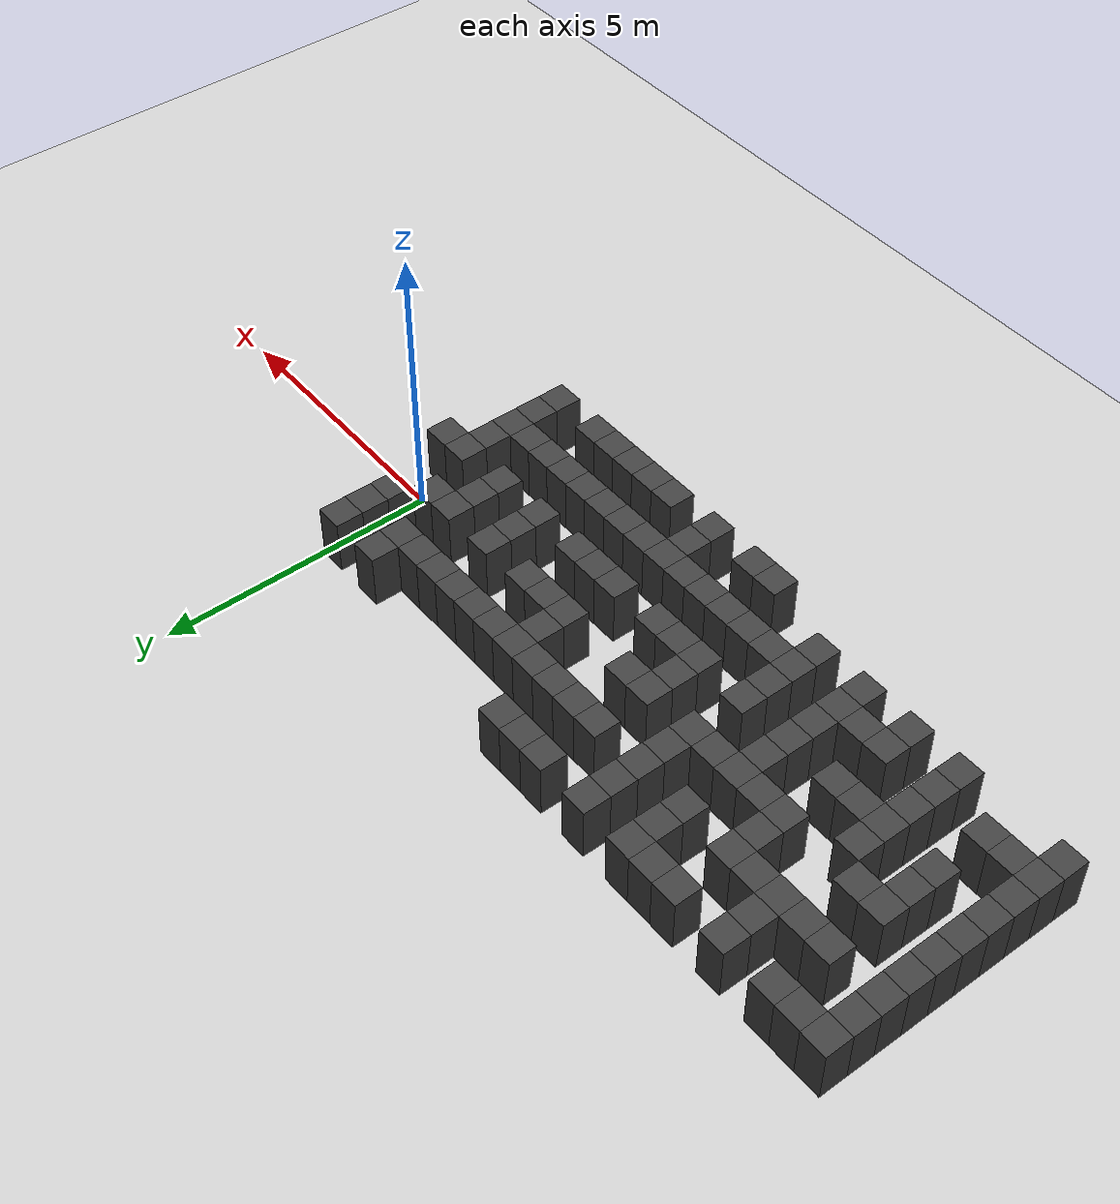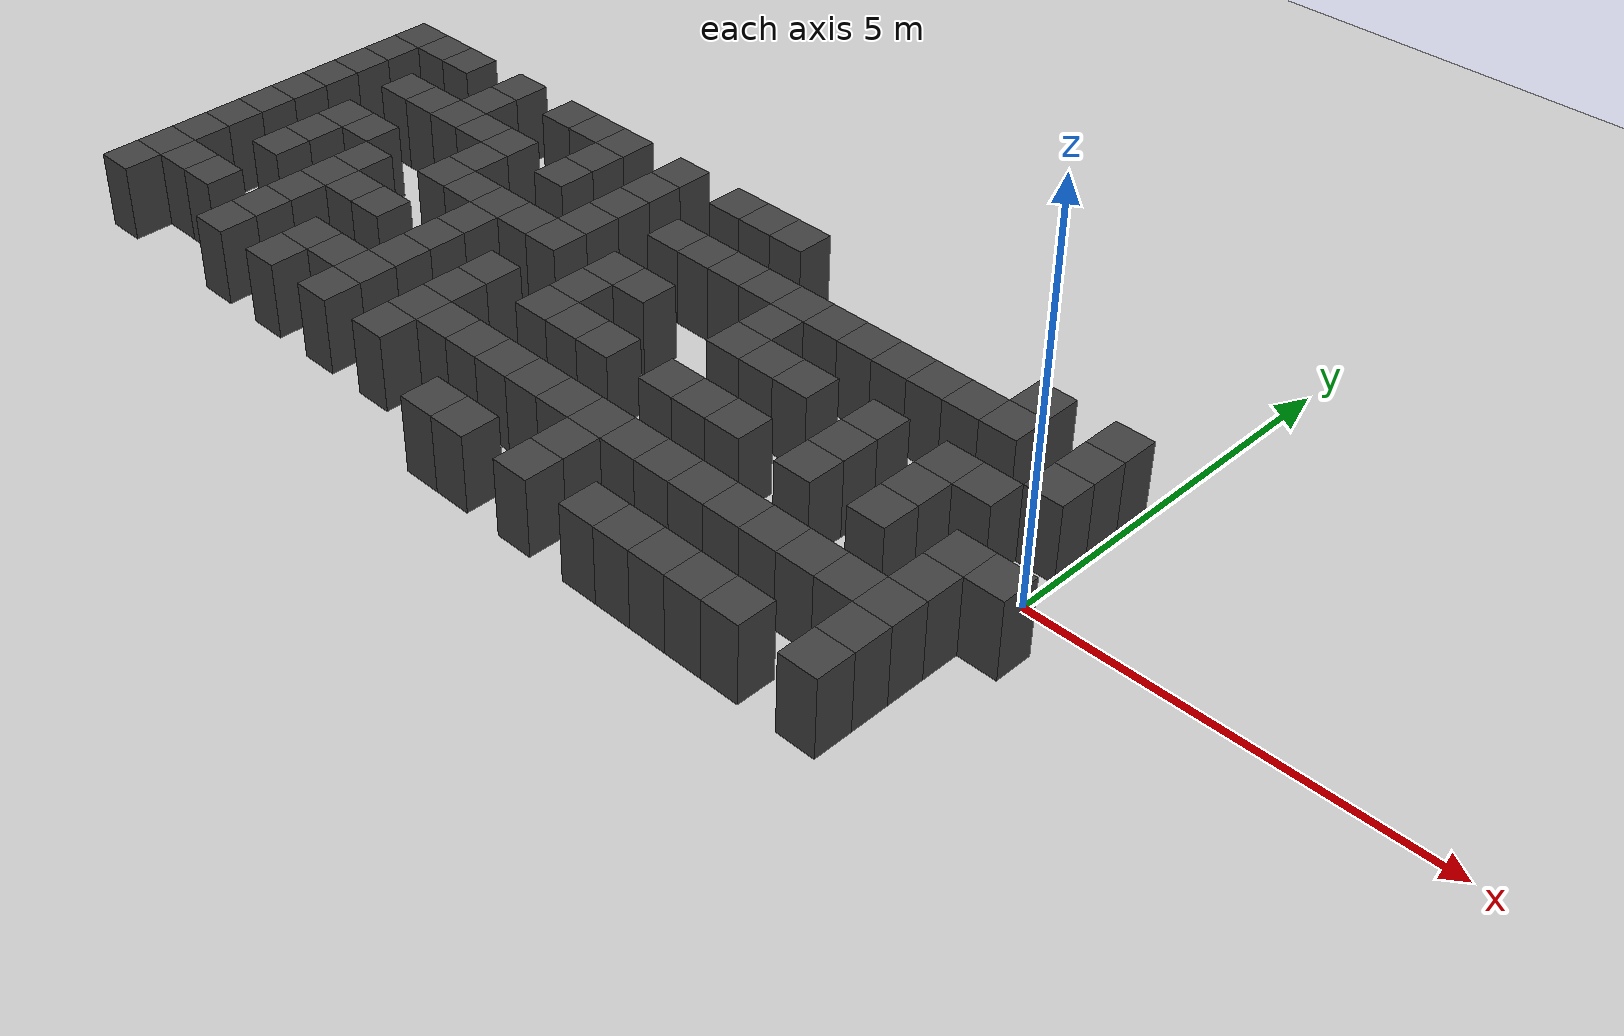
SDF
<sdf version="1.7">
 <world name="map_16603">
  <model name="ground_plane">
   <static>true</static>
   <link name="link">
    <collision name="collision">
     <geometry><plane><normal>0 0 1</normal><size>200 200</size></plane></geometry>
    </collision>
    <visual name="visual">
     <geometry><plane><normal>0 0 1</normal><size>200 200</size></plane></geometry>
     <material><ambient>0.8 0.8 0.8 1</ambient><diffuse>0.8 0.8 0.8 1</diffuse></material>
    </visual>
   </link>
  </model>
  <model name="maze_environment">
   <static>true</static>
   <link name="wall_484">
    <pose>-12.250 2.250 0.500 0 0 0</pose>
    <collision name="col"><geometry><box><size>0.5 0.5 1.0</size></box></geometry></collision>
    <visual name="vis">
     <geometry><box><size>0.5 0.5 1.0</size></box></geometry>
     <material><ambient>0.15 0.15 0.15 1</ambient><diffuse>0.25 0.25 0.25 1</diffuse></material>
    </visual>
   </link>
   <link name="wall_485">
    <pose>-11.750 2.250 0.500 0 0 0</pose>
    <collision name="col"><geometry><box><size>0.5 0.5 1.0</size></box></geometry></collision>
    <visual name="vis">
     <geometry><box><size>0.5 0.5 1.0</size></box></geometry>
     <material><ambient>0.15 0.15 0.15 1</ambient><diffuse>0.25 0.25 0.25 1</diffuse></material>
    </visual>
   </link>
   <link name="wall_486">
    <pose>-11.250 2.250 0.500 0 0 0</pose>
    <collision name="col"><geometry><box><size>0.5 0.5 1.0</size></box></geometry></collision>
    <visual name="vis">
     <geometry><box><size>0.5 0.5 1.0</size></box></geometry>
     <material><ambient>0.15 0.15 0.15 1</ambient><diffuse>0.25 0.25 0.25 1</diffuse></material>
    </visual>
   </link>
   <link name="wall_487">
    <pose>-10.250 2.250 0.500 0 0 0</pose>
    <collision name="col"><geometry><box><size>0.5 0.5 1.0</size></box></geometry></collision>
    <visual name="vis">
     <geometry><box><size>0.5 0.5 1.0</size></box></geometry>
     <material><ambient>0.15 0.15 0.15 1</ambient><diffuse>0.25 0.25 0.25 1</diffuse></material>
    </visual>
   </link>
   <link name="wall_488">
    <pose>-9.250 2.250 0.500 0 0 0</pose>
    <collision name="col"><geometry><box><size>0.5 0.5 1.0</size></box></geometry></collision>
    <visual name="vis">
     <geometry><box><size>0.5 0.5 1.0</size></box></geometry>
     <material><ambient>0.15 0.15 0.15 1</ambient><diffuse>0.25 0.25 0.25 1</diffuse></material>
    </visual>
   </link>
   <link name="wall_489">
    <pose>-8.750 2.250 0.500 0 0 0</pose>
    <collision name="col"><geometry><box><size>0.5 0.5 1.0</size></box></geometry></collision>
    <visual name="vis">
     <geometry><box><size>0.5 0.5 1.0</size></box></geometry>
     <material><ambient>0.15 0.15 0.15 1</ambient><diffuse>0.25 0.25 0.25 1</diffuse></material>
    </visual>
   </link>
   <link name="wall_490">
    <pose>-8.250 2.250 0.500 0 0 0</pose>
    <collision name="col"><geometry><box><size>0.5 0.5 1.0</size></box></geometry></collision>
    <visual name="vis">
     <geometry><box><size>0.5 0.5 1.0</size></box></geometry>
     <material><ambient>0.15 0.15 0.15 1</ambient><diffuse>0.25 0.25 0.25 1</diffuse></material>
    </visual>
   </link>
   <link name="wall_491">
    <pose>-7.250 2.250 0.500 0 0 0</pose>
    <collision name="col"><geometry><box><size>0.5 0.5 1.0</size></box></geometry></collision>
    <visual name="vis">
     <geometry><box><size>0.5 0.5 1.0</size></box></geometry>
     <material><ambient>0.15 0.15 0.15 1</ambient><diffuse>0.25 0.25 0.25 1</diffuse></material>
    </visual>
   </link>
   <link name="wall_492">
    <pose>-6.250 2.250 0.500 0 0 0</pose>
    <collision name="col"><geometry><box><size>0.5 0.5 1.0</size></box></geometry></collision>
    <visual name="vis">
     <geometry><box><size>0.5 0.5 1.0</size></box></geometry>
     <material><ambient>0.15 0.15 0.15 1</ambient><diffuse>0.25 0.25 0.25 1</diffuse></material>
    </visual>
   </link>
   <link name="wall_493">
    <pose>-5.750 2.250 0.500 0 0 0</pose>
    <collision name="col"><geometry><box><size>0.5 0.5 1.0</size></box></geometry></collision>
    <visual name="vis">
     <geometry><box><size>0.5 0.5 1.0</size></box></geometry>
     <material><ambient>0.15 0.15 0.15 1</ambient><diffuse>0.25 0.25 0.25 1</diffuse></material>
    </visual>
   </link>
   <link name="wall_494">
    <pose>-5.250 2.250 0.500 0 0 0</pose>
    <collision name="col"><geometry><box><size>0.5 0.5 1.0</size></box></geometry></collision>
    <visual name="vis">
     <geometry><box><size>0.5 0.5 1.0</size></box></geometry>
     <material><ambient>0.15 0.15 0.15 1</ambient><diffuse>0.25 0.25 0.25 1</diffuse></material>
    </visual>
   </link>
   <link name="wall_519">
    <pose>-12.250 1.750 0.500 0 0 0</pose>
    <collision name="col"><geometry><box><size>0.5 0.5 1.0</size></box></geometry></collision>
    <visual name="vis">
     <geometry><box><size>0.5 0.5 1.0</size></box></geometry>
     <material><ambient>0.15 0.15 0.15 1</ambient><diffuse>0.25 0.25 0.25 1</diffuse></material>
    </visual>
   </link>
   <link name="wall_520">
    <pose>-10.250 1.750 0.500 0 0 0</pose>
    <collision name="col"><geometry><box><size>0.5 0.5 1.0</size></box></geometry></collision>
    <visual name="vis">
     <geometry><box><size>0.5 0.5 1.0</size></box></geometry>
     <material><ambient>0.15 0.15 0.15 1</ambient><diffuse>0.25 0.25 0.25 1</diffuse></material>
    </visual>
   </link>
   <link name="wall_521">
    <pose>-8.250 1.750 0.500 0 0 0</pose>
    <collision name="col"><geometry><box><size>0.5 0.5 1.0</size></box></geometry></collision>
    <visual name="vis">
     <geometry><box><size>0.5 0.5 1.0</size></box></geometry>
     <material><ambient>0.15 0.15 0.15 1</ambient><diffuse>0.25 0.25 0.25 1</diffuse></material>
    </visual>
   </link>
   <link name="wall_522">
    <pose>-7.250 1.750 0.500 0 0 0</pose>
    <collision name="col"><geometry><box><size>0.5 0.5 1.0</size></box></geometry></collision>
    <visual name="vis">
     <geometry><box><size>0.5 0.5 1.0</size></box></geometry>
     <material><ambient>0.15 0.15 0.15 1</ambient><diffuse>0.25 0.25 0.25 1</diffuse></material>
    </visual>
   </link>
   <link name="wall_523">
    <pose>-1.250 1.750 0.500 0 0 0</pose>
    <collision name="col"><geometry><box><size>0.5 0.5 1.0</size></box></geometry></collision>
    <visual name="vis">
     <geometry><box><size>0.5 0.5 1.0</size></box></geometry>
     <material><ambient>0.15 0.15 0.15 1</ambient><diffuse>0.25 0.25 0.25 1</diffuse></material>
    </visual>
   </link>
   <link name="wall_524">
    <pose>-0.250 1.750 0.500 0 0 0</pose>
    <collision name="col"><geometry><box><size>0.5 0.5 1.0</size></box></geometry></collision>
    <visual name="vis">
     <geometry><box><size>0.5 0.5 1.0</size></box></geometry>
     <material><ambient>0.15 0.15 0.15 1</ambient><diffuse>0.25 0.25 0.25 1</diffuse></material>
    </visual>
   </link>
   <link name="wall_531">
    <pose>-12.250 1.250 0.500 0 0 0</pose>
    <collision name="col"><geometry><box><size>0.5 0.5 1.0</size></box></geometry></collision>
    <visual name="vis">
     <geometry><box><size>0.5 0.5 1.0</size></box></geometry>
     <material><ambient>0.15 0.15 0.15 1</ambient><diffuse>0.25 0.25 0.25 1</diffuse></material>
    </visual>
   </link>
   <link name="wall_532">
    <pose>-11.250 1.250 0.500 0 0 0</pose>
    <collision name="col"><geometry><box><size>0.5 0.5 1.0</size></box></geometry></collision>
    <visual name="vis">
     <geometry><box><size>0.5 0.5 1.0</size></box></geometry>
     <material><ambient>0.15 0.15 0.15 1</ambient><diffuse>0.25 0.25 0.25 1</diffuse></material>
    </visual>
   </link>
   <link name="wall_533">
    <pose>-10.750 1.250 0.500 0 0 0</pose>
    <collision name="col"><geometry><box><size>0.5 0.5 1.0</size></box></geometry></collision>
    <visual name="vis">
     <geometry><box><size>0.5 0.5 1.0</size></box></geometry>
     <material><ambient>0.15 0.15 0.15 1</ambient><diffuse>0.25 0.25 0.25 1</diffuse></material>
    </visual>
   </link>
   <link name="wall_534">
    <pose>-10.250 1.250 0.500 0 0 0</pose>
    <collision name="col"><geometry><box><size>0.5 0.5 1.0</size></box></geometry></collision>
    <visual name="vis">
     <geometry><box><size>0.5 0.5 1.0</size></box></geometry>
     <material><ambient>0.15 0.15 0.15 1</ambient><diffuse>0.25 0.25 0.25 1</diffuse></material>
    </visual>
   </link>
   <link name="wall_535">
    <pose>-9.750 1.250 0.500 0 0 0</pose>
    <collision name="col"><geometry><box><size>0.5 0.5 1.0</size></box></geometry></collision>
    <visual name="vis">
     <geometry><box><size>0.5 0.5 1.0</size></box></geometry>
     <material><ambient>0.15 0.15 0.15 1</ambient><diffuse>0.25 0.25 0.25 1</diffuse></material>
    </visual>
   </link>
   <link name="wall_536">
    <pose>-9.250 1.250 0.500 0 0 0</pose>
    <collision name="col"><geometry><box><size>0.5 0.5 1.0</size></box></geometry></collision>
    <visual name="vis">
     <geometry><box><size>0.5 0.5 1.0</size></box></geometry>
     <material><ambient>0.15 0.15 0.15 1</ambient><diffuse>0.25 0.25 0.25 1</diffuse></material>
    </visual>
   </link>
   <link name="wall_537">
    <pose>-8.250 1.250 0.500 0 0 0</pose>
    <collision name="col"><geometry><box><size>0.5 0.5 1.0</size></box></geometry></collision>
    <visual name="vis">
     <geometry><box><size>0.5 0.5 1.0</size></box></geometry>
     <material><ambient>0.15 0.15 0.15 1</ambient><diffuse>0.25 0.25 0.25 1</diffuse></material>
    </visual>
   </link>
   <link name="wall_538">
    <pose>-7.250 1.250 0.500 0 0 0</pose>
    <collision name="col"><geometry><box><size>0.5 0.5 1.0</size></box></geometry></collision>
    <visual name="vis">
     <geometry><box><size>0.5 0.5 1.0</size></box></geometry>
     <material><ambient>0.15 0.15 0.15 1</ambient><diffuse>0.25 0.25 0.25 1</diffuse></material>
    </visual>
   </link>
   <link name="wall_539">
    <pose>-6.250 1.250 0.500 0 0 0</pose>
    <collision name="col"><geometry><box><size>0.5 0.5 1.0</size></box></geometry></collision>
    <visual name="vis">
     <geometry><box><size>0.5 0.5 1.0</size></box></geometry>
     <material><ambient>0.15 0.15 0.15 1</ambient><diffuse>0.25 0.25 0.25 1</diffuse></material>
    </visual>
   </link>
   <link name="wall_540">
    <pose>-5.750 1.250 0.500 0 0 0</pose>
    <collision name="col"><geometry><box><size>0.5 0.5 1.0</size></box></geometry></collision>
    <visual name="vis">
     <geometry><box><size>0.5 0.5 1.0</size></box></geometry>
     <material><ambient>0.15 0.15 0.15 1</ambient><diffuse>0.25 0.25 0.25 1</diffuse></material>
    </visual>
   </link>
   <link name="wall_541">
    <pose>-5.250 1.250 0.500 0 0 0</pose>
    <collision name="col"><geometry><box><size>0.5 0.5 1.0</size></box></geometry></collision>
    <visual name="vis">
     <geometry><box><size>0.5 0.5 1.0</size></box></geometry>
     <material><ambient>0.15 0.15 0.15 1</ambient><diffuse>0.25 0.25 0.25 1</diffuse></material>
    </visual>
   </link>
   <link name="wall_542">
    <pose>-4.750 1.250 0.500 0 0 0</pose>
    <collision name="col"><geometry><box><size>0.5 0.5 1.0</size></box></geometry></collision>
    <visual name="vis">
     <geometry><box><size>0.5 0.5 1.0</size></box></geometry>
     <material><ambient>0.15 0.15 0.15 1</ambient><diffuse>0.25 0.25 0.25 1</diffuse></material>
    </visual>
   </link>
   <link name="wall_543">
    <pose>-4.250 1.250 0.500 0 0 0</pose>
    <collision name="col"><geometry><box><size>0.5 0.5 1.0</size></box></geometry></collision>
    <visual name="vis">
     <geometry><box><size>0.5 0.5 1.0</size></box></geometry>
     <material><ambient>0.15 0.15 0.15 1</ambient><diffuse>0.25 0.25 0.25 1</diffuse></material>
    </visual>
   </link>
   <link name="wall_544">
    <pose>-3.750 1.250 0.500 0 0 0</pose>
    <collision name="col"><geometry><box><size>0.5 0.5 1.0</size></box></geometry></collision>
    <visual name="vis">
     <geometry><box><size>0.5 0.5 1.0</size></box></geometry>
     <material><ambient>0.15 0.15 0.15 1</ambient><diffuse>0.25 0.25 0.25 1</diffuse></material>
    </visual>
   </link>
   <link name="wall_545">
    <pose>-3.250 1.250 0.500 0 0 0</pose>
    <collision name="col"><geometry><box><size>0.5 0.5 1.0</size></box></geometry></collision>
    <visual name="vis">
     <geometry><box><size>0.5 0.5 1.0</size></box></geometry>
     <material><ambient>0.15 0.15 0.15 1</ambient><diffuse>0.25 0.25 0.25 1</diffuse></material>
    </visual>
   </link>
   <link name="wall_546">
    <pose>-2.750 1.250 0.500 0 0 0</pose>
    <collision name="col"><geometry><box><size>0.5 0.5 1.0</size></box></geometry></collision>
    <visual name="vis">
     <geometry><box><size>0.5 0.5 1.0</size></box></geometry>
     <material><ambient>0.15 0.15 0.15 1</ambient><diffuse>0.25 0.25 0.25 1</diffuse></material>
    </visual>
   </link>
   <link name="wall_547">
    <pose>-2.250 1.250 0.500 0 0 0</pose>
    <collision name="col"><geometry><box><size>0.5 0.5 1.0</size></box></geometry></collision>
    <visual name="vis">
     <geometry><box><size>0.5 0.5 1.0</size></box></geometry>
     <material><ambient>0.15 0.15 0.15 1</ambient><diffuse>0.25 0.25 0.25 1</diffuse></material>
    </visual>
   </link>
   <link name="wall_548">
    <pose>-1.750 1.250 0.500 0 0 0</pose>
    <collision name="col"><geometry><box><size>0.5 0.5 1.0</size></box></geometry></collision>
    <visual name="vis">
     <geometry><box><size>0.5 0.5 1.0</size></box></geometry>
     <material><ambient>0.15 0.15 0.15 1</ambient><diffuse>0.25 0.25 0.25 1</diffuse></material>
    </visual>
   </link>
   <link name="wall_549">
    <pose>-1.250 1.250 0.500 0 0 0</pose>
    <collision name="col"><geometry><box><size>0.5 0.5 1.0</size></box></geometry></collision>
    <visual name="vis">
     <geometry><box><size>0.5 0.5 1.0</size></box></geometry>
     <material><ambient>0.15 0.15 0.15 1</ambient><diffuse>0.25 0.25 0.25 1</diffuse></material>
    </visual>
   </link>
   <link name="wall_550">
    <pose>-0.250 1.250 0.500 0 0 0</pose>
    <collision name="col"><geometry><box><size>0.5 0.5 1.0</size></box></geometry></collision>
    <visual name="vis">
     <geometry><box><size>0.5 0.5 1.0</size></box></geometry>
     <material><ambient>0.15 0.15 0.15 1</ambient><diffuse>0.25 0.25 0.25 1</diffuse></material>
    </visual>
   </link>
   <link name="wall_569">
    <pose>-12.250 0.750 0.500 0 0 0</pose>
    <collision name="col"><geometry><box><size>0.5 0.5 1.0</size></box></geometry></collision>
    <visual name="vis">
     <geometry><box><size>0.5 0.5 1.0</size></box></geometry>
     <material><ambient>0.15 0.15 0.15 1</ambient><diffuse>0.25 0.25 0.25 1</diffuse></material>
    </visual>
   </link>
   <link name="wall_570">
    <pose>-9.250 0.750 0.500 0 0 0</pose>
    <collision name="col"><geometry><box><size>0.5 0.5 1.0</size></box></geometry></collision>
    <visual name="vis">
     <geometry><box><size>0.5 0.5 1.0</size></box></geometry>
     <material><ambient>0.15 0.15 0.15 1</ambient><diffuse>0.25 0.25 0.25 1</diffuse></material>
    </visual>
   </link>
   <link name="wall_571">
    <pose>-7.250 0.750 0.500 0 0 0</pose>
    <collision name="col"><geometry><box><size>0.5 0.5 1.0</size></box></geometry></collision>
    <visual name="vis">
     <geometry><box><size>0.5 0.5 1.0</size></box></geometry>
     <material><ambient>0.15 0.15 0.15 1</ambient><diffuse>0.25 0.25 0.25 1</diffuse></material>
    </visual>
   </link>
   <link name="wall_572">
    <pose>-4.250 0.750 0.500 0 0 0</pose>
    <collision name="col"><geometry><box><size>0.5 0.5 1.0</size></box></geometry></collision>
    <visual name="vis">
     <geometry><box><size>0.5 0.5 1.0</size></box></geometry>
     <material><ambient>0.15 0.15 0.15 1</ambient><diffuse>0.25 0.25 0.25 1</diffuse></material>
    </visual>
   </link>
   <link name="wall_573">
    <pose>-0.250 0.750 0.500 0 0 0</pose>
    <collision name="col"><geometry><box><size>0.5 0.5 1.0</size></box></geometry></collision>
    <visual name="vis">
     <geometry><box><size>0.5 0.5 1.0</size></box></geometry>
     <material><ambient>0.15 0.15 0.15 1</ambient><diffuse>0.25 0.25 0.25 1</diffuse></material>
    </visual>
   </link>
   <link name="wall_579">
    <pose>-12.250 0.250 0.500 0 0 0</pose>
    <collision name="col"><geometry><box><size>0.5 0.5 1.0</size></box></geometry></collision>
    <visual name="vis">
     <geometry><box><size>0.5 0.5 1.0</size></box></geometry>
     <material><ambient>0.15 0.15 0.15 1</ambient><diffuse>0.25 0.25 0.25 1</diffuse></material>
    </visual>
   </link>
   <link name="wall_580">
    <pose>-11.250 0.250 0.500 0 0 0</pose>
    <collision name="col"><geometry><box><size>0.5 0.5 1.0</size></box></geometry></collision>
    <visual name="vis">
     <geometry><box><size>0.5 0.5 1.0</size></box></geometry>
     <material><ambient>0.15 0.15 0.15 1</ambient><diffuse>0.25 0.25 0.25 1</diffuse></material>
    </visual>
   </link>
   <link name="wall_581">
    <pose>-10.750 0.250 0.500 0 0 0</pose>
    <collision name="col"><geometry><box><size>0.5 0.5 1.0</size></box></geometry></collision>
    <visual name="vis">
     <geometry><box><size>0.5 0.5 1.0</size></box></geometry>
     <material><ambient>0.15 0.15 0.15 1</ambient><diffuse>0.25 0.25 0.25 1</diffuse></material>
    </visual>
   </link>
   <link name="wall_582">
    <pose>-9.250 0.250 0.500 0 0 0</pose>
    <collision name="col"><geometry><box><size>0.5 0.5 1.0</size></box></geometry></collision>
    <visual name="vis">
     <geometry><box><size>0.5 0.5 1.0</size></box></geometry>
     <material><ambient>0.15 0.15 0.15 1</ambient><diffuse>0.25 0.25 0.25 1</diffuse></material>
    </visual>
   </link>
   <link name="wall_583">
    <pose>-8.750 0.250 0.500 0 0 0</pose>
    <collision name="col"><geometry><box><size>0.5 0.5 1.0</size></box></geometry></collision>
    <visual name="vis">
     <geometry><box><size>0.5 0.5 1.0</size></box></geometry>
     <material><ambient>0.15 0.15 0.15 1</ambient><diffuse>0.25 0.25 0.25 1</diffuse></material>
    </visual>
   </link>
   <link name="wall_584">
    <pose>-8.250 0.250 0.500 0 0 0</pose>
    <collision name="col"><geometry><box><size>0.5 0.5 1.0</size></box></geometry></collision>
    <visual name="vis">
     <geometry><box><size>0.5 0.5 1.0</size></box></geometry>
     <material><ambient>0.15 0.15 0.15 1</ambient><diffuse>0.25 0.25 0.25 1</diffuse></material>
    </visual>
   </link>
   <link name="wall_585">
    <pose>-7.750 0.250 0.500 0 0 0</pose>
    <collision name="col"><geometry><box><size>0.5 0.5 1.0</size></box></geometry></collision>
    <visual name="vis">
     <geometry><box><size>0.5 0.5 1.0</size></box></geometry>
     <material><ambient>0.15 0.15 0.15 1</ambient><diffuse>0.25 0.25 0.25 1</diffuse></material>
    </visual>
   </link>
   <link name="wall_586">
    <pose>-7.250 0.250 0.500 0 0 0</pose>
    <collision name="col"><geometry><box><size>0.5 0.5 1.0</size></box></geometry></collision>
    <visual name="vis">
     <geometry><box><size>0.5 0.5 1.0</size></box></geometry>
     <material><ambient>0.15 0.15 0.15 1</ambient><diffuse>0.25 0.25 0.25 1</diffuse></material>
    </visual>
   </link>
   <link name="wall_587">
    <pose>-6.250 0.250 0.500 0 0 0</pose>
    <collision name="col"><geometry><box><size>0.5 0.5 1.0</size></box></geometry></collision>
    <visual name="vis">
     <geometry><box><size>0.5 0.5 1.0</size></box></geometry>
     <material><ambient>0.15 0.15 0.15 1</ambient><diffuse>0.25 0.25 0.25 1</diffuse></material>
    </visual>
   </link>
   <link name="wall_588">
    <pose>-5.750 0.250 0.500 0 0 0</pose>
    <collision name="col"><geometry><box><size>0.5 0.5 1.0</size></box></geometry></collision>
    <visual name="vis">
     <geometry><box><size>0.5 0.5 1.0</size></box></geometry>
     <material><ambient>0.15 0.15 0.15 1</ambient><diffuse>0.25 0.25 0.25 1</diffuse></material>
    </visual>
   </link>
   <link name="wall_589">
    <pose>-4.250 0.250 0.500 0 0 0</pose>
    <collision name="col"><geometry><box><size>0.5 0.5 1.0</size></box></geometry></collision>
    <visual name="vis">
     <geometry><box><size>0.5 0.5 1.0</size></box></geometry>
     <material><ambient>0.15 0.15 0.15 1</ambient><diffuse>0.25 0.25 0.25 1</diffuse></material>
    </visual>
   </link>
   <link name="wall_590">
    <pose>-3.750 0.250 0.500 0 0 0</pose>
    <collision name="col"><geometry><box><size>0.5 0.5 1.0</size></box></geometry></collision>
    <visual name="vis">
     <geometry><box><size>0.5 0.5 1.0</size></box></geometry>
     <material><ambient>0.15 0.15 0.15 1</ambient><diffuse>0.25 0.25 0.25 1</diffuse></material>
    </visual>
   </link>
   <link name="wall_591">
    <pose>-3.250 0.250 0.500 0 0 0</pose>
    <collision name="col"><geometry><box><size>0.5 0.5 1.0</size></box></geometry></collision>
    <visual name="vis">
     <geometry><box><size>0.5 0.5 1.0</size></box></geometry>
     <material><ambient>0.15 0.15 0.15 1</ambient><diffuse>0.25 0.25 0.25 1</diffuse></material>
    </visual>
   </link>
   <link name="wall_592">
    <pose>-2.250 0.250 0.500 0 0 0</pose>
    <collision name="col"><geometry><box><size>0.5 0.5 1.0</size></box></geometry></collision>
    <visual name="vis">
     <geometry><box><size>0.5 0.5 1.0</size></box></geometry>
     <material><ambient>0.15 0.15 0.15 1</ambient><diffuse>0.25 0.25 0.25 1</diffuse></material>
    </visual>
   </link>
   <link name="wall_593">
    <pose>-1.250 0.250 0.500 0 0 0</pose>
    <collision name="col"><geometry><box><size>0.5 0.5 1.0</size></box></geometry></collision>
    <visual name="vis">
     <geometry><box><size>0.5 0.5 1.0</size></box></geometry>
     <material><ambient>0.15 0.15 0.15 1</ambient><diffuse>0.25 0.25 0.25 1</diffuse></material>
    </visual>
   </link>
   <link name="wall_594">
    <pose>-0.750 0.250 0.500 0 0 0</pose>
    <collision name="col"><geometry><box><size>0.5 0.5 1.0</size></box></geometry></collision>
    <visual name="vis">
     <geometry><box><size>0.5 0.5 1.0</size></box></geometry>
     <material><ambient>0.15 0.15 0.15 1</ambient><diffuse>0.25 0.25 0.25 1</diffuse></material>
    </visual>
   </link>
   <link name="wall_614">
    <pose>-12.250 -0.250 0.500 0 0 0</pose>
    <collision name="col"><geometry><box><size>0.5 0.5 1.0</size></box></geometry></collision>
    <visual name="vis">
     <geometry><box><size>0.5 0.5 1.0</size></box></geometry>
     <material><ambient>0.15 0.15 0.15 1</ambient><diffuse>0.25 0.25 0.25 1</diffuse></material>
    </visual>
   </link>
   <link name="wall_615">
    <pose>-11.250 -0.250 0.500 0 0 0</pose>
    <collision name="col"><geometry><box><size>0.5 0.5 1.0</size></box></geometry></collision>
    <visual name="vis">
     <geometry><box><size>0.5 0.5 1.0</size></box></geometry>
     <material><ambient>0.15 0.15 0.15 1</ambient><diffuse>0.25 0.25 0.25 1</diffuse></material>
    </visual>
   </link>
   <link name="wall_616">
    <pose>-10.250 -0.250 0.500 0 0 0</pose>
    <collision name="col"><geometry><box><size>0.5 0.5 1.0</size></box></geometry></collision>
    <visual name="vis">
     <geometry><box><size>0.5 0.5 1.0</size></box></geometry>
     <material><ambient>0.15 0.15 0.15 1</ambient><diffuse>0.25 0.25 0.25 1</diffuse></material>
    </visual>
   </link>
   <link name="wall_617">
    <pose>-8.250 -0.250 0.500 0 0 0</pose>
    <collision name="col"><geometry><box><size>0.5 0.5 1.0</size></box></geometry></collision>
    <visual name="vis">
     <geometry><box><size>0.5 0.5 1.0</size></box></geometry>
     <material><ambient>0.15 0.15 0.15 1</ambient><diffuse>0.25 0.25 0.25 1</diffuse></material>
    </visual>
   </link>
   <link name="wall_618">
    <pose>-6.250 -0.250 0.500 0 0 0</pose>
    <collision name="col"><geometry><box><size>0.5 0.5 1.0</size></box></geometry></collision>
    <visual name="vis">
     <geometry><box><size>0.5 0.5 1.0</size></box></geometry>
     <material><ambient>0.15 0.15 0.15 1</ambient><diffuse>0.25 0.25 0.25 1</diffuse></material>
    </visual>
   </link>
   <link name="wall_619">
    <pose>-2.250 -0.250 0.500 0 0 0</pose>
    <collision name="col"><geometry><box><size>0.5 0.5 1.0</size></box></geometry></collision>
    <visual name="vis">
     <geometry><box><size>0.5 0.5 1.0</size></box></geometry>
     <material><ambient>0.15 0.15 0.15 1</ambient><diffuse>0.25 0.25 0.25 1</diffuse></material>
    </visual>
   </link>
   <link name="wall_620">
    <pose>-1.250 -0.250 0.500 0 0 0</pose>
    <collision name="col"><geometry><box><size>0.5 0.5 1.0</size></box></geometry></collision>
    <visual name="vis">
     <geometry><box><size>0.5 0.5 1.0</size></box></geometry>
     <material><ambient>0.15 0.15 0.15 1</ambient><diffuse>0.25 0.25 0.25 1</diffuse></material>
    </visual>
   </link>
   <link name="wall_629">
    <pose>-12.250 -0.750 0.500 0 0 0</pose>
    <collision name="col"><geometry><box><size>0.5 0.5 1.0</size></box></geometry></collision>
    <visual name="vis">
     <geometry><box><size>0.5 0.5 1.0</size></box></geometry>
     <material><ambient>0.15 0.15 0.15 1</ambient><diffuse>0.25 0.25 0.25 1</diffuse></material>
    </visual>
   </link>
   <link name="wall_630">
    <pose>-11.250 -0.750 0.500 0 0 0</pose>
    <collision name="col"><geometry><box><size>0.5 0.5 1.0</size></box></geometry></collision>
    <visual name="vis">
     <geometry><box><size>0.5 0.5 1.0</size></box></geometry>
     <material><ambient>0.15 0.15 0.15 1</ambient><diffuse>0.25 0.25 0.25 1</diffuse></material>
    </visual>
   </link>
   <link name="wall_631">
    <pose>-10.250 -0.750 0.500 0 0 0</pose>
    <collision name="col"><geometry><box><size>0.5 0.5 1.0</size></box></geometry></collision>
    <visual name="vis">
     <geometry><box><size>0.5 0.5 1.0</size></box></geometry>
     <material><ambient>0.15 0.15 0.15 1</ambient><diffuse>0.25 0.25 0.25 1</diffuse></material>
    </visual>
   </link>
   <link name="wall_632">
    <pose>-9.750 -0.750 0.500 0 0 0</pose>
    <collision name="col"><geometry><box><size>0.5 0.5 1.0</size></box></geometry></collision>
    <visual name="vis">
     <geometry><box><size>0.5 0.5 1.0</size></box></geometry>
     <material><ambient>0.15 0.15 0.15 1</ambient><diffuse>0.25 0.25 0.25 1</diffuse></material>
    </visual>
   </link>
   <link name="wall_633">
    <pose>-9.250 -0.750 0.500 0 0 0</pose>
    <collision name="col"><geometry><box><size>0.5 0.5 1.0</size></box></geometry></collision>
    <visual name="vis">
     <geometry><box><size>0.5 0.5 1.0</size></box></geometry>
     <material><ambient>0.15 0.15 0.15 1</ambient><diffuse>0.25 0.25 0.25 1</diffuse></material>
    </visual>
   </link>
   <link name="wall_634">
    <pose>-8.250 -0.750 0.500 0 0 0</pose>
    <collision name="col"><geometry><box><size>0.5 0.5 1.0</size></box></geometry></collision>
    <visual name="vis">
     <geometry><box><size>0.5 0.5 1.0</size></box></geometry>
     <material><ambient>0.15 0.15 0.15 1</ambient><diffuse>0.25 0.25 0.25 1</diffuse></material>
    </visual>
   </link>
   <link name="wall_635">
    <pose>-7.250 -0.750 0.500 0 0 0</pose>
    <collision name="col"><geometry><box><size>0.5 0.5 1.0</size></box></geometry></collision>
    <visual name="vis">
     <geometry><box><size>0.5 0.5 1.0</size></box></geometry>
     <material><ambient>0.15 0.15 0.15 1</ambient><diffuse>0.25 0.25 0.25 1</diffuse></material>
    </visual>
   </link>
   <link name="wall_636">
    <pose>-6.250 -0.750 0.500 0 0 0</pose>
    <collision name="col"><geometry><box><size>0.5 0.5 1.0</size></box></geometry></collision>
    <visual name="vis">
     <geometry><box><size>0.5 0.5 1.0</size></box></geometry>
     <material><ambient>0.15 0.15 0.15 1</ambient><diffuse>0.25 0.25 0.25 1</diffuse></material>
    </visual>
   </link>
   <link name="wall_637">
    <pose>-5.750 -0.750 0.500 0 0 0</pose>
    <collision name="col"><geometry><box><size>0.5 0.5 1.0</size></box></geometry></collision>
    <visual name="vis">
     <geometry><box><size>0.5 0.5 1.0</size></box></geometry>
     <material><ambient>0.15 0.15 0.15 1</ambient><diffuse>0.25 0.25 0.25 1</diffuse></material>
    </visual>
   </link>
   <link name="wall_638">
    <pose>-5.250 -0.750 0.500 0 0 0</pose>
    <collision name="col"><geometry><box><size>0.5 0.5 1.0</size></box></geometry></collision>
    <visual name="vis">
     <geometry><box><size>0.5 0.5 1.0</size></box></geometry>
     <material><ambient>0.15 0.15 0.15 1</ambient><diffuse>0.25 0.25 0.25 1</diffuse></material>
    </visual>
   </link>
   <link name="wall_639">
    <pose>-4.250 -0.750 0.500 0 0 0</pose>
    <collision name="col"><geometry><box><size>0.5 0.5 1.0</size></box></geometry></collision>
    <visual name="vis">
     <geometry><box><size>0.5 0.5 1.0</size></box></geometry>
     <material><ambient>0.15 0.15 0.15 1</ambient><diffuse>0.25 0.25 0.25 1</diffuse></material>
    </visual>
   </link>
   <link name="wall_640">
    <pose>-3.750 -0.750 0.500 0 0 0</pose>
    <collision name="col"><geometry><box><size>0.5 0.5 1.0</size></box></geometry></collision>
    <visual name="vis">
     <geometry><box><size>0.5 0.5 1.0</size></box></geometry>
     <material><ambient>0.15 0.15 0.15 1</ambient><diffuse>0.25 0.25 0.25 1</diffuse></material>
    </visual>
   </link>
   <link name="wall_641">
    <pose>-3.250 -0.750 0.500 0 0 0</pose>
    <collision name="col"><geometry><box><size>0.5 0.5 1.0</size></box></geometry></collision>
    <visual name="vis">
     <geometry><box><size>0.5 0.5 1.0</size></box></geometry>
     <material><ambient>0.15 0.15 0.15 1</ambient><diffuse>0.25 0.25 0.25 1</diffuse></material>
    </visual>
   </link>
   <link name="wall_642">
    <pose>-2.250 -0.750 0.500 0 0 0</pose>
    <collision name="col"><geometry><box><size>0.5 0.5 1.0</size></box></geometry></collision>
    <visual name="vis">
     <geometry><box><size>0.5 0.5 1.0</size></box></geometry>
     <material><ambient>0.15 0.15 0.15 1</ambient><diffuse>0.25 0.25 0.25 1</diffuse></material>
    </visual>
   </link>
   <link name="wall_643">
    <pose>-1.250 -0.750 0.500 0 0 0</pose>
    <collision name="col"><geometry><box><size>0.5 0.5 1.0</size></box></geometry></collision>
    <visual name="vis">
     <geometry><box><size>0.5 0.5 1.0</size></box></geometry>
     <material><ambient>0.15 0.15 0.15 1</ambient><diffuse>0.25 0.25 0.25 1</diffuse></material>
    </visual>
   </link>
   <link name="wall_644">
    <pose>-0.250 -0.750 0.500 0 0 0</pose>
    <collision name="col"><geometry><box><size>0.5 0.5 1.0</size></box></geometry></collision>
    <visual name="vis">
     <geometry><box><size>0.5 0.5 1.0</size></box></geometry>
     <material><ambient>0.15 0.15 0.15 1</ambient><diffuse>0.25 0.25 0.25 1</diffuse></material>
    </visual>
   </link>
   <link name="wall_645">
    <pose>0.250 -0.750 0.500 0 0 0</pose>
    <collision name="col"><geometry><box><size>0.5 0.5 1.0</size></box></geometry></collision>
    <visual name="vis">
     <geometry><box><size>0.5 0.5 1.0</size></box></geometry>
     <material><ambient>0.15 0.15 0.15 1</ambient><diffuse>0.25 0.25 0.25 1</diffuse></material>
    </visual>
   </link>
   <link name="wall_664">
    <pose>-12.250 -1.250 0.500 0 0 0</pose>
    <collision name="col"><geometry><box><size>0.5 0.5 1.0</size></box></geometry></collision>
    <visual name="vis">
     <geometry><box><size>0.5 0.5 1.0</size></box></geometry>
     <material><ambient>0.15 0.15 0.15 1</ambient><diffuse>0.25 0.25 0.25 1</diffuse></material>
    </visual>
   </link>
   <link name="wall_665">
    <pose>-10.250 -1.250 0.500 0 0 0</pose>
    <collision name="col"><geometry><box><size>0.5 0.5 1.0</size></box></geometry></collision>
    <visual name="vis">
     <geometry><box><size>0.5 0.5 1.0</size></box></geometry>
     <material><ambient>0.15 0.15 0.15 1</ambient><diffuse>0.25 0.25 0.25 1</diffuse></material>
    </visual>
   </link>
   <link name="wall_666">
    <pose>-8.250 -1.250 0.500 0 0 0</pose>
    <collision name="col"><geometry><box><size>0.5 0.5 1.0</size></box></geometry></collision>
    <visual name="vis">
     <geometry><box><size>0.5 0.5 1.0</size></box></geometry>
     <material><ambient>0.15 0.15 0.15 1</ambient><diffuse>0.25 0.25 0.25 1</diffuse></material>
    </visual>
   </link>
   <link name="wall_667">
    <pose>-7.250 -1.250 0.500 0 0 0</pose>
    <collision name="col"><geometry><box><size>0.5 0.5 1.0</size></box></geometry></collision>
    <visual name="vis">
     <geometry><box><size>0.5 0.5 1.0</size></box></geometry>
     <material><ambient>0.15 0.15 0.15 1</ambient><diffuse>0.25 0.25 0.25 1</diffuse></material>
    </visual>
   </link>
   <link name="wall_668">
    <pose>-0.250 -1.250 0.500 0 0 0</pose>
    <collision name="col"><geometry><box><size>0.5 0.5 1.0</size></box></geometry></collision>
    <visual name="vis">
     <geometry><box><size>0.5 0.5 1.0</size></box></geometry>
     <material><ambient>0.15 0.15 0.15 1</ambient><diffuse>0.25 0.25 0.25 1</diffuse></material>
    </visual>
   </link>
   <link name="wall_675">
    <pose>-12.250 -1.750 0.500 0 0 0</pose>
    <collision name="col"><geometry><box><size>0.5 0.5 1.0</size></box></geometry></collision>
    <visual name="vis">
     <geometry><box><size>0.5 0.5 1.0</size></box></geometry>
     <material><ambient>0.15 0.15 0.15 1</ambient><diffuse>0.25 0.25 0.25 1</diffuse></material>
    </visual>
   </link>
   <link name="wall_676">
    <pose>-11.750 -1.750 0.500 0 0 0</pose>
    <collision name="col"><geometry><box><size>0.5 0.5 1.0</size></box></geometry></collision>
    <visual name="vis">
     <geometry><box><size>0.5 0.5 1.0</size></box></geometry>
     <material><ambient>0.15 0.15 0.15 1</ambient><diffuse>0.25 0.25 0.25 1</diffuse></material>
    </visual>
   </link>
   <link name="wall_677">
    <pose>-11.250 -1.750 0.500 0 0 0</pose>
    <collision name="col"><geometry><box><size>0.5 0.5 1.0</size></box></geometry></collision>
    <visual name="vis">
     <geometry><box><size>0.5 0.5 1.0</size></box></geometry>
     <material><ambient>0.15 0.15 0.15 1</ambient><diffuse>0.25 0.25 0.25 1</diffuse></material>
    </visual>
   </link>
   <link name="wall_678">
    <pose>-10.250 -1.750 0.500 0 0 0</pose>
    <collision name="col"><geometry><box><size>0.5 0.5 1.0</size></box></geometry></collision>
    <visual name="vis">
     <geometry><box><size>0.5 0.5 1.0</size></box></geometry>
     <material><ambient>0.15 0.15 0.15 1</ambient><diffuse>0.25 0.25 0.25 1</diffuse></material>
    </visual>
   </link>
   <link name="wall_679">
    <pose>-9.250 -1.750 0.500 0 0 0</pose>
    <collision name="col"><geometry><box><size>0.5 0.5 1.0</size></box></geometry></collision>
    <visual name="vis">
     <geometry><box><size>0.5 0.5 1.0</size></box></geometry>
     <material><ambient>0.15 0.15 0.15 1</ambient><diffuse>0.25 0.25 0.25 1</diffuse></material>
    </visual>
   </link>
   <link name="wall_680">
    <pose>-8.750 -1.750 0.500 0 0 0</pose>
    <collision name="col"><geometry><box><size>0.5 0.5 1.0</size></box></geometry></collision>
    <visual name="vis">
     <geometry><box><size>0.5 0.5 1.0</size></box></geometry>
     <material><ambient>0.15 0.15 0.15 1</ambient><diffuse>0.25 0.25 0.25 1</diffuse></material>
    </visual>
   </link>
   <link name="wall_681">
    <pose>-8.250 -1.750 0.500 0 0 0</pose>
    <collision name="col"><geometry><box><size>0.5 0.5 1.0</size></box></geometry></collision>
    <visual name="vis">
     <geometry><box><size>0.5 0.5 1.0</size></box></geometry>
     <material><ambient>0.15 0.15 0.15 1</ambient><diffuse>0.25 0.25 0.25 1</diffuse></material>
    </visual>
   </link>
   <link name="wall_682">
    <pose>-7.250 -1.750 0.500 0 0 0</pose>
    <collision name="col"><geometry><box><size>0.5 0.5 1.0</size></box></geometry></collision>
    <visual name="vis">
     <geometry><box><size>0.5 0.5 1.0</size></box></geometry>
     <material><ambient>0.15 0.15 0.15 1</ambient><diffuse>0.25 0.25 0.25 1</diffuse></material>
    </visual>
   </link>
   <link name="wall_683">
    <pose>-6.750 -1.750 0.500 0 0 0</pose>
    <collision name="col"><geometry><box><size>0.5 0.5 1.0</size></box></geometry></collision>
    <visual name="vis">
     <geometry><box><size>0.5 0.5 1.0</size></box></geometry>
     <material><ambient>0.15 0.15 0.15 1</ambient><diffuse>0.25 0.25 0.25 1</diffuse></material>
    </visual>
   </link>
   <link name="wall_684">
    <pose>-6.250 -1.750 0.500 0 0 0</pose>
    <collision name="col"><geometry><box><size>0.5 0.5 1.0</size></box></geometry></collision>
    <visual name="vis">
     <geometry><box><size>0.5 0.5 1.0</size></box></geometry>
     <material><ambient>0.15 0.15 0.15 1</ambient><diffuse>0.25 0.25 0.25 1</diffuse></material>
    </visual>
   </link>
   <link name="wall_685">
    <pose>-5.750 -1.750 0.500 0 0 0</pose>
    <collision name="col"><geometry><box><size>0.5 0.5 1.0</size></box></geometry></collision>
    <visual name="vis">
     <geometry><box><size>0.5 0.5 1.0</size></box></geometry>
     <material><ambient>0.15 0.15 0.15 1</ambient><diffuse>0.25 0.25 0.25 1</diffuse></material>
    </visual>
   </link>
   <link name="wall_686">
    <pose>-5.250 -1.750 0.500 0 0 0</pose>
    <collision name="col"><geometry><box><size>0.5 0.5 1.0</size></box></geometry></collision>
    <visual name="vis">
     <geometry><box><size>0.5 0.5 1.0</size></box></geometry>
     <material><ambient>0.15 0.15 0.15 1</ambient><diffuse>0.25 0.25 0.25 1</diffuse></material>
    </visual>
   </link>
   <link name="wall_687">
    <pose>-4.750 -1.750 0.500 0 0 0</pose>
    <collision name="col"><geometry><box><size>0.5 0.5 1.0</size></box></geometry></collision>
    <visual name="vis">
     <geometry><box><size>0.5 0.5 1.0</size></box></geometry>
     <material><ambient>0.15 0.15 0.15 1</ambient><diffuse>0.25 0.25 0.25 1</diffuse></material>
    </visual>
   </link>
   <link name="wall_688">
    <pose>-4.250 -1.750 0.500 0 0 0</pose>
    <collision name="col"><geometry><box><size>0.5 0.5 1.0</size></box></geometry></collision>
    <visual name="vis">
     <geometry><box><size>0.5 0.5 1.0</size></box></geometry>
     <material><ambient>0.15 0.15 0.15 1</ambient><diffuse>0.25 0.25 0.25 1</diffuse></material>
    </visual>
   </link>
   <link name="wall_689">
    <pose>-3.750 -1.750 0.500 0 0 0</pose>
    <collision name="col"><geometry><box><size>0.5 0.5 1.0</size></box></geometry></collision>
    <visual name="vis">
     <geometry><box><size>0.5 0.5 1.0</size></box></geometry>
     <material><ambient>0.15 0.15 0.15 1</ambient><diffuse>0.25 0.25 0.25 1</diffuse></material>
    </visual>
   </link>
   <link name="wall_690">
    <pose>-3.250 -1.750 0.500 0 0 0</pose>
    <collision name="col"><geometry><box><size>0.5 0.5 1.0</size></box></geometry></collision>
    <visual name="vis">
     <geometry><box><size>0.5 0.5 1.0</size></box></geometry>
     <material><ambient>0.15 0.15 0.15 1</ambient><diffuse>0.25 0.25 0.25 1</diffuse></material>
    </visual>
   </link>
   <link name="wall_691">
    <pose>-2.750 -1.750 0.500 0 0 0</pose>
    <collision name="col"><geometry><box><size>0.5 0.5 1.0</size></box></geometry></collision>
    <visual name="vis">
     <geometry><box><size>0.5 0.5 1.0</size></box></geometry>
     <material><ambient>0.15 0.15 0.15 1</ambient><diffuse>0.25 0.25 0.25 1</diffuse></material>
    </visual>
   </link>
   <link name="wall_692">
    <pose>-2.250 -1.750 0.500 0 0 0</pose>
    <collision name="col"><geometry><box><size>0.5 0.5 1.0</size></box></geometry></collision>
    <visual name="vis">
     <geometry><box><size>0.5 0.5 1.0</size></box></geometry>
     <material><ambient>0.15 0.15 0.15 1</ambient><diffuse>0.25 0.25 0.25 1</diffuse></material>
    </visual>
   </link>
   <link name="wall_693">
    <pose>-1.750 -1.750 0.500 0 0 0</pose>
    <collision name="col"><geometry><box><size>0.5 0.5 1.0</size></box></geometry></collision>
    <visual name="vis">
     <geometry><box><size>0.5 0.5 1.0</size></box></geometry>
     <material><ambient>0.15 0.15 0.15 1</ambient><diffuse>0.25 0.25 0.25 1</diffuse></material>
    </visual>
   </link>
   <link name="wall_694">
    <pose>-1.250 -1.750 0.500 0 0 0</pose>
    <collision name="col"><geometry><box><size>0.5 0.5 1.0</size></box></geometry></collision>
    <visual name="vis">
     <geometry><box><size>0.5 0.5 1.0</size></box></geometry>
     <material><ambient>0.15 0.15 0.15 1</ambient><diffuse>0.25 0.25 0.25 1</diffuse></material>
    </visual>
   </link>
   <link name="wall_695">
    <pose>-0.750 -1.750 0.500 0 0 0</pose>
    <collision name="col"><geometry><box><size>0.5 0.5 1.0</size></box></geometry></collision>
    <visual name="vis">
     <geometry><box><size>0.5 0.5 1.0</size></box></geometry>
     <material><ambient>0.15 0.15 0.15 1</ambient><diffuse>0.25 0.25 0.25 1</diffuse></material>
    </visual>
   </link>
   <link name="wall_696">
    <pose>-0.250 -1.750 0.500 0 0 0</pose>
    <collision name="col"><geometry><box><size>0.5 0.5 1.0</size></box></geometry></collision>
    <visual name="vis">
     <geometry><box><size>0.5 0.5 1.0</size></box></geometry>
     <material><ambient>0.15 0.15 0.15 1</ambient><diffuse>0.25 0.25 0.25 1</diffuse></material>
    </visual>
   </link>
   <link name="wall_714">
    <pose>-12.250 -2.250 0.500 0 0 0</pose>
    <collision name="col"><geometry><box><size>0.5 0.5 1.0</size></box></geometry></collision>
    <visual name="vis">
     <geometry><box><size>0.5 0.5 1.0</size></box></geometry>
     <material><ambient>0.15 0.15 0.15 1</ambient><diffuse>0.25 0.25 0.25 1</diffuse></material>
    </visual>
   </link>
   <link name="wall_715">
    <pose>-10.250 -2.250 0.500 0 0 0</pose>
    <collision name="col"><geometry><box><size>0.5 0.5 1.0</size></box></geometry></collision>
    <visual name="vis">
     <geometry><box><size>0.5 0.5 1.0</size></box></geometry>
     <material><ambient>0.15 0.15 0.15 1</ambient><diffuse>0.25 0.25 0.25 1</diffuse></material>
    </visual>
   </link>
   <link name="wall_716">
    <pose>-9.250 -2.250 0.500 0 0 0</pose>
    <collision name="col"><geometry><box><size>0.5 0.5 1.0</size></box></geometry></collision>
    <visual name="vis">
     <geometry><box><size>0.5 0.5 1.0</size></box></geometry>
     <material><ambient>0.15 0.15 0.15 1</ambient><diffuse>0.25 0.25 0.25 1</diffuse></material>
    </visual>
   </link>
   <link name="wall_717">
    <pose>-8.250 -2.250 0.500 0 0 0</pose>
    <collision name="col"><geometry><box><size>0.5 0.5 1.0</size></box></geometry></collision>
    <visual name="vis">
     <geometry><box><size>0.5 0.5 1.0</size></box></geometry>
     <material><ambient>0.15 0.15 0.15 1</ambient><diffuse>0.25 0.25 0.25 1</diffuse></material>
    </visual>
   </link>
   <link name="wall_718">
    <pose>-7.250 -2.250 0.500 0 0 0</pose>
    <collision name="col"><geometry><box><size>0.5 0.5 1.0</size></box></geometry></collision>
    <visual name="vis">
     <geometry><box><size>0.5 0.5 1.0</size></box></geometry>
     <material><ambient>0.15 0.15 0.15 1</ambient><diffuse>0.25 0.25 0.25 1</diffuse></material>
    </visual>
   </link>
   <link name="wall_719">
    <pose>-4.250 -2.250 0.500 0 0 0</pose>
    <collision name="col"><geometry><box><size>0.5 0.5 1.0</size></box></geometry></collision>
    <visual name="vis">
     <geometry><box><size>0.5 0.5 1.0</size></box></geometry>
     <material><ambient>0.15 0.15 0.15 1</ambient><diffuse>0.25 0.25 0.25 1</diffuse></material>
    </visual>
   </link>
   <link name="wall_720">
    <pose>-0.250 -2.250 0.500 0 0 0</pose>
    <collision name="col"><geometry><box><size>0.5 0.5 1.0</size></box></geometry></collision>
    <visual name="vis">
     <geometry><box><size>0.5 0.5 1.0</size></box></geometry>
     <material><ambient>0.15 0.15 0.15 1</ambient><diffuse>0.25 0.25 0.25 1</diffuse></material>
    </visual>
   </link>
   <link name="wall_738">
    <pose>-5.750 -2.750 0.500 0 0 0</pose>
    <collision name="col"><geometry><box><size>0.5 0.5 1.0</size></box></geometry></collision>
    <visual name="vis">
     <geometry><box><size>0.5 0.5 1.0</size></box></geometry>
     <material><ambient>0.15 0.15 0.15 1</ambient><diffuse>0.25 0.25 0.25 1</diffuse></material>
    </visual>
   </link>
   <link name="wall_739">
    <pose>-5.250 -2.750 0.500 0 0 0</pose>
    <collision name="col"><geometry><box><size>0.5 0.5 1.0</size></box></geometry></collision>
    <visual name="vis">
     <geometry><box><size>0.5 0.5 1.0</size></box></geometry>
     <material><ambient>0.15 0.15 0.15 1</ambient><diffuse>0.25 0.25 0.25 1</diffuse></material>
    </visual>
   </link>
   <link name="wall_740">
    <pose>-4.250 -2.750 0.500 0 0 0</pose>
    <collision name="col"><geometry><box><size>0.5 0.5 1.0</size></box></geometry></collision>
    <visual name="vis">
     <geometry><box><size>0.5 0.5 1.0</size></box></geometry>
     <material><ambient>0.15 0.15 0.15 1</ambient><diffuse>0.25 0.25 0.25 1</diffuse></material>
    </visual>
   </link>
   <link name="wall_741">
    <pose>-3.250 -2.750 0.500 0 0 0</pose>
    <collision name="col"><geometry><box><size>0.5 0.5 1.0</size></box></geometry></collision>
    <visual name="vis">
     <geometry><box><size>0.5 0.5 1.0</size></box></geometry>
     <material><ambient>0.15 0.15 0.15 1</ambient><diffuse>0.25 0.25 0.25 1</diffuse></material>
    </visual>
   </link>
   <link name="wall_742">
    <pose>-2.750 -2.750 0.500 0 0 0</pose>
    <collision name="col"><geometry><box><size>0.5 0.5 1.0</size></box></geometry></collision>
    <visual name="vis">
     <geometry><box><size>0.5 0.5 1.0</size></box></geometry>
     <material><ambient>0.15 0.15 0.15 1</ambient><diffuse>0.25 0.25 0.25 1</diffuse></material>
    </visual>
   </link>
   <link name="wall_743">
    <pose>-2.250 -2.750 0.500 0 0 0</pose>
    <collision name="col"><geometry><box><size>0.5 0.5 1.0</size></box></geometry></collision>
    <visual name="vis">
     <geometry><box><size>0.5 0.5 1.0</size></box></geometry>
     <material><ambient>0.15 0.15 0.15 1</ambient><diffuse>0.25 0.25 0.25 1</diffuse></material>
    </visual>
   </link>
   <link name="wall_744">
    <pose>-1.750 -2.750 0.500 0 0 0</pose>
    <collision name="col"><geometry><box><size>0.5 0.5 1.0</size></box></geometry></collision>
    <visual name="vis">
     <geometry><box><size>0.5 0.5 1.0</size></box></geometry>
     <material><ambient>0.15 0.15 0.15 1</ambient><diffuse>0.25 0.25 0.25 1</diffuse></material>
    </visual>
   </link>
   <link name="wall_745">
    <pose>-1.250 -2.750 0.500 0 0 0</pose>
    <collision name="col"><geometry><box><size>0.5 0.5 1.0</size></box></geometry></collision>
    <visual name="vis">
     <geometry><box><size>0.5 0.5 1.0</size></box></geometry>
     <material><ambient>0.15 0.15 0.15 1</ambient><diffuse>0.25 0.25 0.25 1</diffuse></material>
    </visual>
   </link>
   <link name="wall_746">
    <pose>-0.250 -2.750 0.500 0 0 0</pose>
    <collision name="col"><geometry><box><size>0.5 0.5 1.0</size></box></geometry></collision>
    <visual name="vis">
     <geometry><box><size>0.5 0.5 1.0</size></box></geometry>
     <material><ambient>0.15 0.15 0.15 1</ambient><diffuse>0.25 0.25 0.25 1</diffuse></material>
    </visual>
   </link>
  </model>
 </world>
</sdf>
